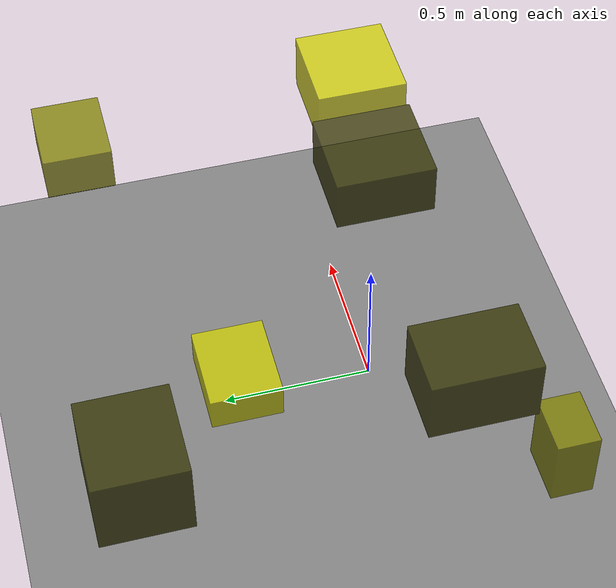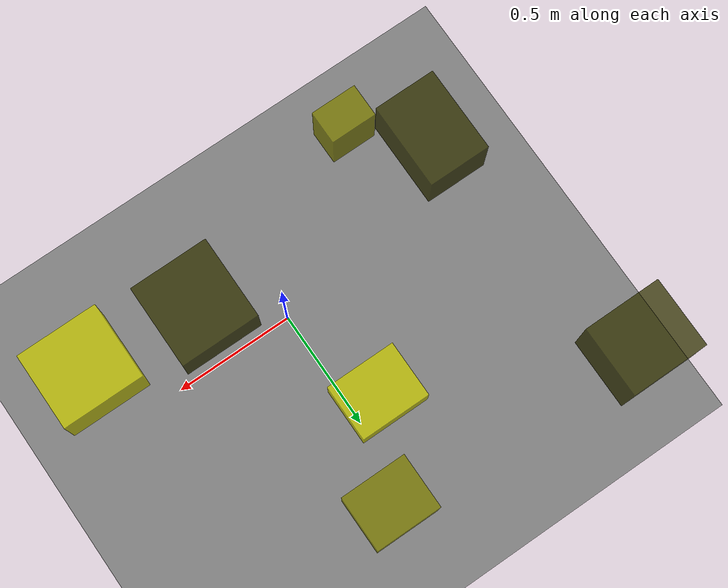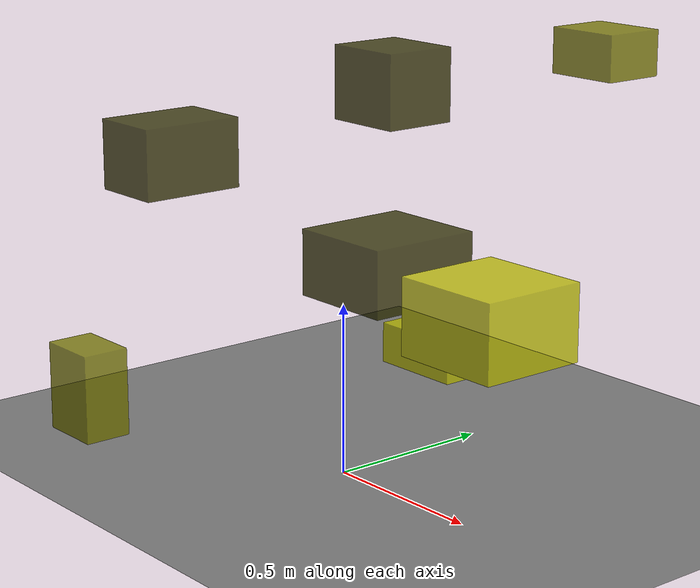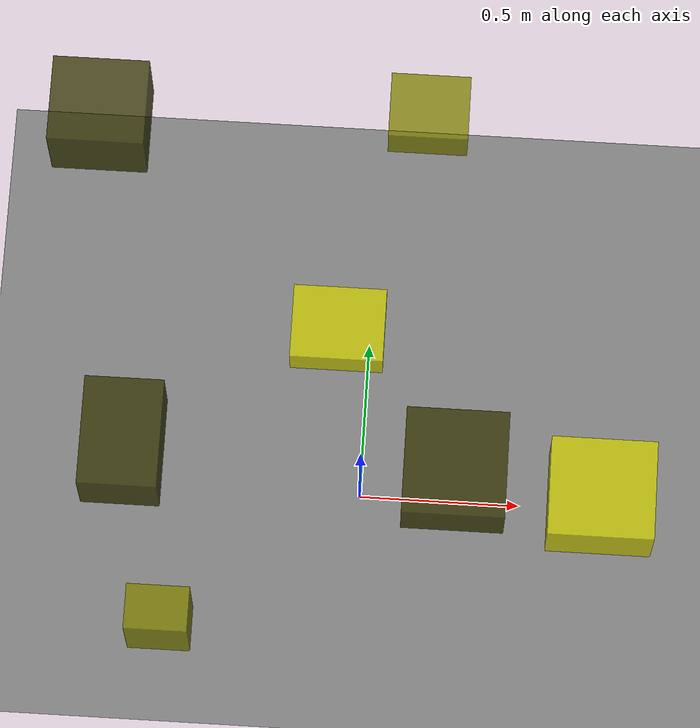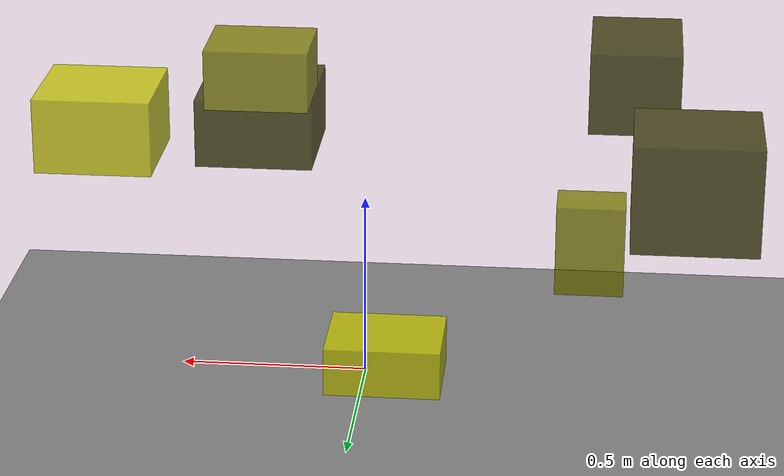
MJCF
<?xml version="1.0"?>
<mujoco model="obstacle_scene">
  <compiler angle="radian" coordinate="local"/>
  <option timestep="0.001" gravity="0 0 -9.81"/>

  <asset>
    <material name="obstacle_mat" rgba="0.8 0.8 0.0 0.8"/>
    <material name="ground_mat" rgba="0.5 0.5 0.5 1"/>
  </asset>

  <worldbody>
    <!-- Ground plane -->
    <geom name="ground" type="plane" size="3 3 0.1" material="ground_mat"/>

    <!-- Obstacles -->
    <body name="obstacle_0" pos="0.287819 -0.085471 0.694462">
      <geom name="obs_0" type="box" size="0.153862 0.162862 0.091095" rgba="0.2 0.2 0.0 0.8"/>
    </body>
    <body name="obstacle_1" pos="-0.595978 -0.473930 0.200730">
      <geom name="obs_1" type="box" size="0.097335 0.070521 0.131757" rgba="0.5 0.5 0.0 0.8"/>
    </body>
    <body name="obstacle_2" pos="0.729653 -0.129002 0.650253">
      <geom name="obs_2" type="box" size="0.157975 0.150867 0.102999" rgba="0.8 0.8 0.0 0.8"/>
    </body>
    <body name="obstacle_3" pos="-0.701764 -0.094701 0.834247">
      <geom name="obs_3" type="box" size="0.117461 0.163908 0.107681" rgba="0.2 0.2 0.0 0.8"/>
    </body>
    <body name="obstacle_4" pos="0.150532 0.870935 1.148267">
      <geom name="obs_4" type="box" size="0.116802 0.097850 0.068783" rgba="0.5 0.5 0.0 0.8"/>
    </body>
    <body name="obstacle_5" pos="-0.097531 0.471446 0.262570">
      <geom name="obs_5" type="box" size="0.145473 0.117414 0.061656" rgba="0.8 0.8 0.0 0.8"/>
    </body>
    <body name="obstacle_6" pos="-0.838935 0.896941 0.919445">
      <geom name="obs_6" type="box" size="0.144504 0.131441 0.127129" rgba="0.2 0.2 0.0 0.8"/>
    </body>
  </worldbody>
</mujoco>
